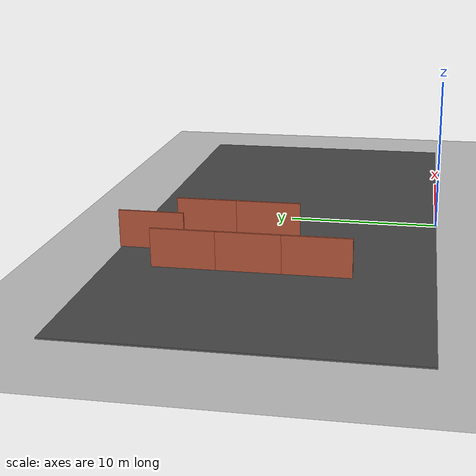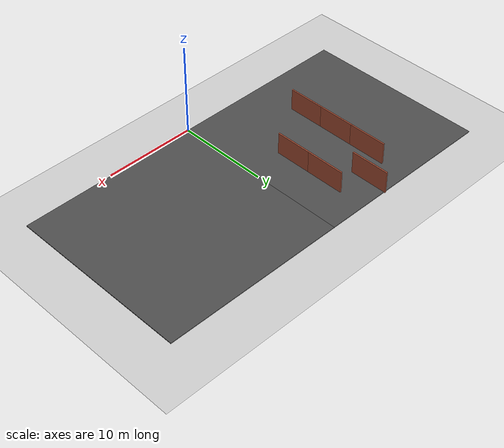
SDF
<sdf version="1.6">
 <world name="default">
  <model name="ground_plane">
   <static>1</static>
   <link name="link">
    <collision name="collision">
     <geometry><plane><normal>0 0 1</normal><size>100 100</size></plane></geometry>
     <surface><friction><ode><mu>100</mu><mu2>50</mu2></ode></friction></surface>
    </collision>
    <visual name="visual">
     <cast_shadows>0</cast_shadows>
     <geometry><plane><normal>0 0 1</normal><size>100 100</size></plane></geometry>
     <material>
      <script><uri>file://media/materials/scripts/gazebo.material</uri><name>Gazebo/Grey</name></script>
     </material>
    </visual>
   </link>
  </model>
  <model name="asphalt_plane">
   <static>1</static>
   <link name="link">
    <collision name="collision"><geometry><box><size>20 20 0.1</size></box></geometry></collision>
    <visual name="visual">
     <cast_shadows>0</cast_shadows>
     <geometry><box><size>20 20 0.1</size></box></geometry>
     <material>
      <script>
       <uri>model://asphalt_plane/materials/scripts</uri>
       <uri>model://asphalt_plane/materials/textures</uri>
       <name>vrc/asphalt</name>
      </script>
     </material>
    </visual>
   </link>
   <pose>10 10 0 0 -0 0</pose>
  </model>
  <model name="asphalt_plane_0">
   <static>1</static>
   <link name="link">
    <collision name="collision"><geometry><box><size>20 20 0.1</size></box></geometry></collision>
    <visual name="visual">
     <cast_shadows>0</cast_shadows>
     <geometry><box><size>20 20 0.1</size></box></geometry>
     <material>
      <script>
       <uri>model://asphalt_plane/materials/scripts</uri>
       <uri>model://asphalt_plane/materials/textures</uri>
       <name>vrc/asphalt</name>
      </script>
     </material>
    </visual>
   </link>
   <pose>-10 10 0 0 -0 0</pose>
  </model>
  <model name="worlds_1_clone_1_clone_2">
   <pose>-7 18 0 0 -0 0</pose>
   <link name="brick_longwall_wall_0">
    <collision name="brick_longwall_wall_0_Collision">
     <geometry><box><size>4.25 0.15 2.5</size></box></geometry>
     <pose>0 0 1.25 0 -0 0</pose>
    </collision>
    <visual name="brick_longwall_wall_0_Visual">
     <pose>0 0 1.25 0 -0 0</pose>
     <geometry><box><size>4.25 0.15 2.5</size></box></geometry>
     <material>
      <script><uri>file://media/materials/scripts/gazebo.material</uri><name>Gazebo/Bricks</name></script>
      <ambient>1 1 1 1</ambient>
     </material>
    </visual>
    <pose>0 -0 0 0 -0 1.5708</pose>
   </link>
   <static>1</static>
  </model>
  <model name="worlds_1_clone_1_clone_3">
   <pose>-10 15 0 0 -0 0</pose>
   <link name="brick_longwall_wall_0">
    <collision name="brick_longwall_wall_0_Collision">
     <geometry><box><size>4.25 0.15 2.5</size></box></geometry>
     <pose>0 0 1.25 0 -0 0</pose>
    </collision>
    <visual name="brick_longwall_wall_0_Visual">
     <pose>0 0 1.25 0 -0 0</pose>
     <geometry><box><size>4.25 0.15 2.5</size></box></geometry>
     <material>
      <script><uri>file://media/materials/scripts/gazebo.material</uri><name>Gazebo/Bricks</name></script>
      <ambient>1 1 1 1</ambient>
     </material>
    </visual>
    <pose>0 -0 0 0 -0 1.5708</pose>
   </link>
   <static>1</static>
  </model>
  <model name="worlds_1_clone_1_clone_4">
   <pose>-10 11 0 0 -0 0</pose>
   <link name="brick_longwall_wall_0">
    <collision name="brick_longwall_wall_0_Collision">
     <geometry><box><size>4.25 0.15 2.5</size></box></geometry>
     <pose>0 0 1.25 0 -0 0</pose>
    </collision>
    <visual name="brick_longwall_wall_0_Visual">
     <pose>0 0 1.25 0 -0 0</pose>
     <geometry><box><size>4.25 0.15 2.5</size></box></geometry>
     <material>
      <script><uri>file://media/materials/scripts/gazebo.material</uri><name>Gazebo/Bricks</name></script>
      <ambient>1 1 1 1</ambient>
     </material>
    </visual>
    <pose>0 -0 0 0 -0 1.5708</pose>
   </link>
   <static>1</static>
  </model>
  <model name="worlds_1_clone_1_clone_5">
   <pose>-4 15 0 0 -0 0</pose>
   <link name="brick_longwall_wall_0">
    <collision name="brick_longwall_wall_0_Collision">
     <geometry><box><size>4.25 0.15 2.5</size></box></geometry>
     <pose>0 0 1.25 0 -0 0</pose>
    </collision>
    <visual name="brick_longwall_wall_0_Visual">
     <pose>0 0 1.25 0 -0 0</pose>
     <geometry><box><size>4.25 0.15 2.5</size></box></geometry>
     <material>
      <script><uri>file://media/materials/scripts/gazebo.material</uri><name>Gazebo/Bricks</name></script>
      <ambient>1 1 1 1</ambient>
     </material>
    </visual>
    <pose>0 -0 0 0 -0 1.5708</pose>
   </link>
   <static>1</static>
  </model>
  <model name="worlds_1_clone_1_clone_6">
   <pose>-4 11 0 0 -0 0</pose>
   <link name="brick_longwall_wall_0">
    <collision name="brick_longwall_wall_0_Collision">
     <geometry><box><size>4.25 0.15 2.5</size></box></geometry>
     <pose>0 0 1.25 0 -0 0</pose>
    </collision>
    <visual name="brick_longwall_wall_0_Visual">
     <pose>0 0 1.25 0 -0 0</pose>
     <geometry><box><size>4.25 0.15 2.5</size></box></geometry>
     <material>
      <script><uri>file://media/materials/scripts/gazebo.material</uri><name>Gazebo/Bricks</name></script>
      <ambient>1 1 1 1</ambient>
     </material>
    </visual>
    <pose>0 -0 0 0 -0 1.5708</pose>
   </link>
   <static>1</static>
  </model>
  <model name="worlds_1_clone_1_clone_7">
   <pose>-10 7 0 0 -0 0</pose>
   <link name="brick_longwall_wall_0">
    <collision name="brick_longwall_wall_0_Collision">
     <geometry><box><size>4.25 0.15 2.5</size></box></geometry>
     <pose>0 0 1.25 0 -0 0</pose>
    </collision>
    <visual name="brick_longwall_wall_0_Visual">
     <pose>0 0 1.25 0 -0 0</pose>
     <geometry><box><size>4.25 0.15 2.5</size></box></geometry>
     <material>
      <script><uri>file://media/materials/scripts/gazebo.material</uri><name>Gazebo/Bricks</name></script>
      <ambient>1 1 1 1</ambient>
     </material>
    </visual>
    <pose>0 -0 0 0 -0 1.5708</pose>
   </link>
   <static>1</static>
  </model>
 </world>
</sdf>
